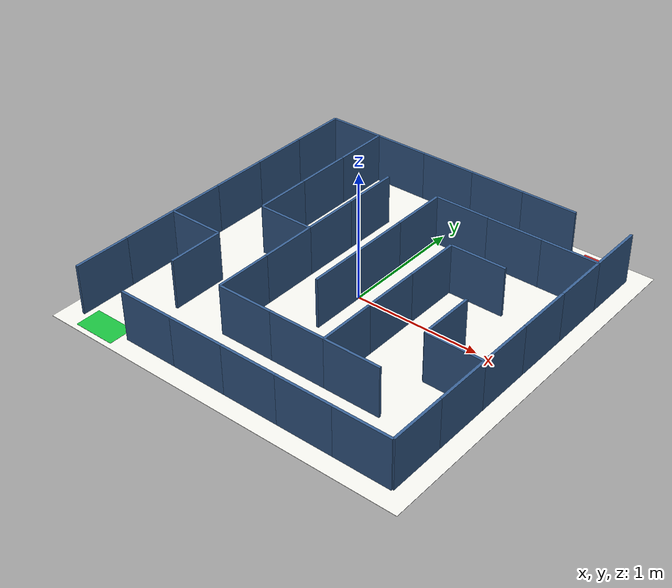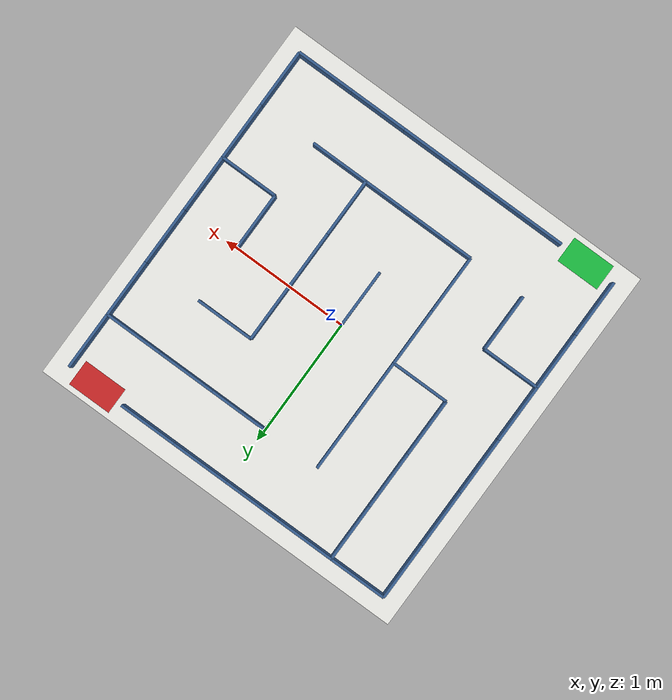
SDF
<?xml version="1.0" ?>
<sdf version="1.8">
  <world name="maze_world_demo">

    <include>
      <uri>https://fuel.gazebosim.org/1.0/OpenRobotics/models/Sun</uri>
    </include>

    <plugin filename="gz-sim-physics-system"
            name="gz::sim::systems::Physics"/>

    <plugin filename="gz-sim-user-commands-system"
            name="gz::sim::systems::UserCommands"/>

    <plugin filename="gz-sim-scene-broadcaster-system"
            name="gz::sim::systems::SceneBroadcaster"/>

    <plugin filename="gz-sim-sensors-system"
            name="gz::sim::systems::Sensors">
      <render_engine>ogre2</render_engine>
    </plugin>

    <scene>
      <ambient>0.4 0.4 0.4 1</ambient>
    </scene>

    <model name="white_floor">
      <static>true</static>
      <pose>0 0 0 0 0 0</pose>
      <link name="floor_link">
        <collision name="collision">
          <geometry>
            <plane>
              <normal>0 0 1</normal>
              <size>3 3</size>
            </plane>
          </geometry>
        </collision>
        <visual name="visual">
          <geometry>
            <plane>
              <normal>0 0 1</normal>
              <size>3 3</size>
            </plane>
          </geometry>
          <material>
            <ambient>0.92 0.92 0.9 1</ambient>
            <diffuse>0.95 0.95 0.93 1</diffuse>
            <specular>0.05 0.05 0.05 1</specular>
          </material>
        </visual>
      </link>
    </model>

    <model name="wall_h_0_0">
      <static>true</static>
      <link name="link">
        <pose>-1.125 1.35 0.2 0 0 0</pose>
        <collision name="collision"><geometry><box><size>0.45 0.02 0.4</size></box></geometry></collision>
        <visual name="visual">
          <geometry><box><size>0.45 0.02 0.4</size></box></geometry>
          <material>
            <ambient>0.18 0.32 0.5 1</ambient>
            <diffuse>0.22 0.38 0.58 1</diffuse>
            <specular>0.15 0.15 0.15 1</specular>
          </material>
        </visual>
      </link>
    </model>

    <model name="wall_h_0_1">
      <static>true</static>
      <link name="link">
        <pose>-0.675 1.35 0.2 0 0 0</pose>
        <collision name="collision"><geometry><box><size>0.45 0.02 0.4</size></box></geometry></collision>
        <visual name="visual">
          <geometry><box><size>0.45 0.02 0.4</size></box></geometry>
          <material>
            <ambient>0.18 0.32 0.5 1</ambient>
            <diffuse>0.22 0.38 0.58 1</diffuse>
            <specular>0.15 0.15 0.15 1</specular>
          </material>
        </visual>
      </link>
    </model>

    <model name="wall_h_0_2">
      <static>true</static>
      <link name="link">
        <pose>-0.225 1.35 0.2 0 0 0</pose>
        <collision name="collision"><geometry><box><size>0.45 0.02 0.4</size></box></geometry></collision>
        <visual name="visual">
          <geometry><box><size>0.45 0.02 0.4</size></box></geometry>
          <material>
            <ambient>0.18 0.32 0.5 1</ambient>
            <diffuse>0.22 0.38 0.58 1</diffuse>
            <specular>0.15 0.15 0.15 1</specular>
          </material>
        </visual>
      </link>
    </model>

    <model name="wall_h_0_3">
      <static>true</static>
      <link name="link">
        <pose>0.225 1.35 0.2 0 0 0</pose>
        <collision name="collision"><geometry><box><size>0.45 0.02 0.4</size></box></geometry></collision>
        <visual name="visual">
          <geometry><box><size>0.45 0.02 0.4</size></box></geometry>
          <material>
            <ambient>0.18 0.32 0.5 1</ambient>
            <diffuse>0.22 0.38 0.58 1</diffuse>
            <specular>0.15 0.15 0.15 1</specular>
          </material>
        </visual>
      </link>
    </model>

    <model name="wall_h_0_4">
      <static>true</static>
      <link name="link">
        <pose>0.675 1.35 0.2 0 0 0</pose>
        <collision name="collision"><geometry><box><size>0.45 0.02 0.4</size></box></geometry></collision>
        <visual name="visual">
          <geometry><box><size>0.45 0.02 0.4</size></box></geometry>
          <material>
            <ambient>0.18 0.32 0.5 1</ambient>
            <diffuse>0.22 0.38 0.58 1</diffuse>
            <specular>0.15 0.15 0.15 1</specular>
          </material>
        </visual>
      </link>
    </model>

    <model name="wall_h_1_3">
      <static>true</static>
      <link name="link">
        <pose>0.225 0.9 0.2 0 0 0</pose>
        <collision name="collision"><geometry><box><size>0.45 0.02 0.4</size></box></geometry></collision>
        <visual name="visual">
          <geometry><box><size>0.45 0.02 0.4</size></box></geometry>
          <material>
            <ambient>0.18 0.32 0.5 1</ambient>
            <diffuse>0.22 0.38 0.58 1</diffuse>
            <specular>0.15 0.15 0.15 1</specular>
          </material>
        </visual>
      </link>
    </model>

    <model name="wall_h_1_4">
      <static>true</static>
      <link name="link">
        <pose>0.675 0.9 0.2 0 0 0</pose>
        <collision name="collision"><geometry><box><size>0.45 0.02 0.4</size></box></geometry></collision>
        <visual name="visual">
          <geometry><box><size>0.45 0.02 0.4</size></box></geometry>
          <material>
            <ambient>0.18 0.32 0.5 1</ambient>
            <diffuse>0.22 0.38 0.58 1</diffuse>
            <specular>0.15 0.15 0.15 1</specular>
          </material>
        </visual>
      </link>
    </model>

    <model name="wall_h_1_5">
      <static>true</static>
      <link name="link">
        <pose>1.125 0.9 0.2 0 0 0</pose>
        <collision name="collision"><geometry><box><size>0.45 0.02 0.4</size></box></geometry></collision>
        <visual name="visual">
          <geometry><box><size>0.45 0.02 0.4</size></box></geometry>
          <material>
            <ambient>0.18 0.32 0.5 1</ambient>
            <diffuse>0.22 0.38 0.58 1</diffuse>
            <specular>0.15 0.15 0.15 1</specular>
          </material>
        </visual>
      </link>
    </model>

    <model name="wall_h_2_4">
      <static>true</static>
      <link name="link">
        <pose>0.675 0.45 0.2 0 0 0</pose>
        <collision name="collision"><geometry><box><size>0.45 0.02 0.4</size></box></geometry></collision>
        <visual name="visual">
          <geometry><box><size>0.45 0.02 0.4</size></box></geometry>
          <material>
            <ambient>0.18 0.32 0.5 1</ambient>
            <diffuse>0.22 0.38 0.58 1</diffuse>
            <specular>0.15 0.15 0.15 1</specular>
          </material>
        </visual>
      </link>
    </model>

    <model name="wall_h_3_1">
      <static>true</static>
      <link name="link">
        <pose>-0.675 0 0.2 0 0 0</pose>
        <collision name="collision"><geometry><box><size>0.45 0.02 0.4</size></box></geometry></collision>
        <visual name="visual">
          <geometry><box><size>0.45 0.02 0.4</size></box></geometry>
          <material>
            <ambient>0.18 0.32 0.5 1</ambient>
            <diffuse>0.22 0.38 0.58 1</diffuse>
            <specular>0.15 0.15 0.15 1</specular>
          </material>
        </visual>
      </link>
    </model>

    <model name="wall_h_4_0">
      <static>true</static>
      <link name="link">
        <pose>-1.125 -0.45 0.2 0 0 0</pose>
        <collision name="collision"><geometry><box><size>0.45 0.02 0.4</size></box></geometry></collision>
        <visual name="visual">
          <geometry><box><size>0.45 0.02 0.4</size></box></geometry>
          <material>
            <ambient>0.18 0.32 0.5 1</ambient>
            <diffuse>0.22 0.38 0.58 1</diffuse>
            <specular>0.15 0.15 0.15 1</specular>
          </material>
        </visual>
      </link>
    </model>

    <model name="wall_h_4_5">
      <static>true</static>
      <link name="link">
        <pose>1.125 -0.45 0.2 0 0 0</pose>
        <collision name="collision"><geometry><box><size>0.45 0.02 0.4</size></box></geometry></collision>
        <visual name="visual">
          <geometry><box><size>0.45 0.02 0.4</size></box></geometry>
          <material>
            <ambient>0.18 0.32 0.5 1</ambient>
            <diffuse>0.22 0.38 0.58 1</diffuse>
            <specular>0.15 0.15 0.15 1</specular>
          </material>
        </visual>
      </link>
    </model>

    <model name="wall_h_5_2">
      <static>true</static>
      <link name="link">
        <pose>-0.225 -0.9 0.2 0 0 0</pose>
        <collision name="collision"><geometry><box><size>0.45 0.02 0.4</size></box></geometry></collision>
        <visual name="visual">
          <geometry><box><size>0.45 0.02 0.4</size></box></geometry>
          <material>
            <ambient>0.18 0.32 0.5 1</ambient>
            <diffuse>0.22 0.38 0.58 1</diffuse>
            <specular>0.15 0.15 0.15 1</specular>
          </material>
        </visual>
      </link>
    </model>

    <model name="wall_h_5_3">
      <static>true</static>
      <link name="link">
        <pose>0.225 -0.9 0.2 0 0 0</pose>
        <collision name="collision"><geometry><box><size>0.45 0.02 0.4</size></box></geometry></collision>
        <visual name="visual">
          <geometry><box><size>0.45 0.02 0.4</size></box></geometry>
          <material>
            <ambient>0.18 0.32 0.5 1</ambient>
            <diffuse>0.22 0.38 0.58 1</diffuse>
            <specular>0.15 0.15 0.15 1</specular>
          </material>
        </visual>
      </link>
    </model>

    <model name="wall_h_5_4">
      <static>true</static>
      <link name="link">
        <pose>0.675 -0.9 0.2 0 0 0</pose>
        <collision name="collision"><geometry><box><size>0.45 0.02 0.4</size></box></geometry></collision>
        <visual name="visual">
          <geometry><box><size>0.45 0.02 0.4</size></box></geometry>
          <material>
            <ambient>0.18 0.32 0.5 1</ambient>
            <diffuse>0.22 0.38 0.58 1</diffuse>
            <specular>0.15 0.15 0.15 1</specular>
          </material>
        </visual>
      </link>
    </model>

    <model name="wall_h_6_1">
      <static>true</static>
      <link name="link">
        <pose>-0.675 -1.35 0.2 0 0 0</pose>
        <collision name="collision"><geometry><box><size>0.45 0.02 0.4</size></box></geometry></collision>
        <visual name="visual">
          <geometry><box><size>0.45 0.02 0.4</size></box></geometry>
          <material>
            <ambient>0.18 0.32 0.5 1</ambient>
            <diffuse>0.22 0.38 0.58 1</diffuse>
            <specular>0.15 0.15 0.15 1</specular>
          </material>
        </visual>
      </link>
    </model>

    <model name="wall_h_6_2">
      <static>true</static>
      <link name="link">
        <pose>-0.225 -1.35 0.2 0 0 0</pose>
        <collision name="collision"><geometry><box><size>0.45 0.02 0.4</size></box></geometry></collision>
        <visual name="visual">
          <geometry><box><size>0.45 0.02 0.4</size></box></geometry>
          <material>
            <ambient>0.18 0.32 0.5 1</ambient>
            <diffuse>0.22 0.38 0.58 1</diffuse>
            <specular>0.15 0.15 0.15 1</specular>
          </material>
        </visual>
      </link>
    </model>

    <model name="wall_h_6_3">
      <static>true</static>
      <link name="link">
        <pose>0.225 -1.35 0.2 0 0 0</pose>
        <collision name="collision"><geometry><box><size>0.45 0.02 0.4</size></box></geometry></collision>
        <visual name="visual">
          <geometry><box><size>0.45 0.02 0.4</size></box></geometry>
          <material>
            <ambient>0.18 0.32 0.5 1</ambient>
            <diffuse>0.22 0.38 0.58 1</diffuse>
            <specular>0.15 0.15 0.15 1</specular>
          </material>
        </visual>
      </link>
    </model>

    <model name="wall_h_6_4">
      <static>true</static>
      <link name="link">
        <pose>0.675 -1.35 0.2 0 0 0</pose>
        <collision name="collision"><geometry><box><size>0.45 0.02 0.4</size></box></geometry></collision>
        <visual name="visual">
          <geometry><box><size>0.45 0.02 0.4</size></box></geometry>
          <material>
            <ambient>0.18 0.32 0.5 1</ambient>
            <diffuse>0.22 0.38 0.58 1</diffuse>
            <specular>0.15 0.15 0.15 1</specular>
          </material>
        </visual>
      </link>
    </model>

    <model name="wall_h_6_5">
      <static>true</static>
      <link name="link">
        <pose>1.125 -1.35 0.2 0 0 0</pose>
        <collision name="collision"><geometry><box><size>0.45 0.02 0.4</size></box></geometry></collision>
        <visual name="visual">
          <geometry><box><size>0.45 0.02 0.4</size></box></geometry>
          <material>
            <ambient>0.18 0.32 0.5 1</ambient>
            <diffuse>0.22 0.38 0.58 1</diffuse>
            <specular>0.15 0.15 0.15 1</specular>
          </material>
        </visual>
      </link>
    </model>

    <model name="wall_v_0_0">
      <static>true</static>
      <link name="link">
        <pose>-1.35 1.125 0.2 0 0 0</pose>
        <collision name="collision"><geometry><box><size>0.02 0.45 0.4</size></box></geometry></collision>
        <visual name="visual">
          <geometry><box><size>0.02 0.45 0.4</size></box></geometry>
          <material>
            <ambient>0.18 0.32 0.5 1</ambient>
            <diffuse>0.22 0.38 0.58 1</diffuse>
            <specular>0.15 0.15 0.15 1</specular>
          </material>
        </visual>
      </link>
    </model>

    <model name="wall_v_0_1">
      <static>true</static>
      <link name="link">
        <pose>-1.35 0.675 0.2 0 0 0</pose>
        <collision name="collision"><geometry><box><size>0.02 0.45 0.4</size></box></geometry></collision>
        <visual name="visual">
          <geometry><box><size>0.02 0.45 0.4</size></box></geometry>
          <material>
            <ambient>0.18 0.32 0.5 1</ambient>
            <diffuse>0.22 0.38 0.58 1</diffuse>
            <specular>0.15 0.15 0.15 1</specular>
          </material>
        </visual>
      </link>
    </model>

    <model name="wall_v_0_2">
      <static>true</static>
      <link name="link">
        <pose>-1.35 0.225 0.2 0 0 0</pose>
        <collision name="collision"><geometry><box><size>0.02 0.45 0.4</size></box></geometry></collision>
        <visual name="visual">
          <geometry><box><size>0.02 0.45 0.4</size></box></geometry>
          <material>
            <ambient>0.18 0.32 0.5 1</ambient>
            <diffuse>0.22 0.38 0.58 1</diffuse>
            <specular>0.15 0.15 0.15 1</specular>
          </material>
        </visual>
      </link>
    </model>

    <model name="wall_v_0_3">
      <static>true</static>
      <link name="link">
        <pose>-1.35 -0.225 0.2 0 0 0</pose>
        <collision name="collision"><geometry><box><size>0.02 0.45 0.4</size></box></geometry></collision>
        <visual name="visual">
          <geometry><box><size>0.02 0.45 0.4</size></box></geometry>
          <material>
            <ambient>0.18 0.32 0.5 1</ambient>
            <diffuse>0.22 0.38 0.58 1</diffuse>
            <specular>0.15 0.15 0.15 1</specular>
          </material>
        </visual>
      </link>
    </model>

    <model name="wall_v_0_4">
      <static>true</static>
      <link name="link">
        <pose>-1.35 -0.675 0.2 0 0 0</pose>
        <collision name="collision"><geometry><box><size>0.02 0.45 0.4</size></box></geometry></collision>
        <visual name="visual">
          <geometry><box><size>0.02 0.45 0.4</size></box></geometry>
          <material>
            <ambient>0.18 0.32 0.5 1</ambient>
            <diffuse>0.22 0.38 0.58 1</diffuse>
            <specular>0.15 0.15 0.15 1</specular>
          </material>
        </visual>
      </link>
    </model>

    <model name="wall_v_0_5">
      <static>true</static>
      <link name="link">
        <pose>-1.35 -1.125 0.2 0 0 0</pose>
        <collision name="collision"><geometry><box><size>0.02 0.45 0.4</size></box></geometry></collision>
        <visual name="visual">
          <geometry><box><size>0.02 0.45 0.4</size></box></geometry>
          <material>
            <ambient>0.18 0.32 0.5 1</ambient>
            <diffuse>0.22 0.38 0.58 1</diffuse>
            <specular>0.15 0.15 0.15 1</specular>
          </material>
        </visual>
      </link>
    </model>

    <model name="wall_v_1_0">
      <static>true</static>
      <link name="link">
        <pose>-0.9 1.125 0.2 0 0 0</pose>
        <collision name="collision"><geometry><box><size>0.02 0.45 0.4</size></box></geometry></collision>
        <visual name="visual">
          <geometry><box><size>0.02 0.45 0.4</size></box></geometry>
          <material>
            <ambient>0.18 0.32 0.5 1</ambient>
            <diffuse>0.22 0.38 0.58 1</diffuse>
            <specular>0.15 0.15 0.15 1</specular>
          </material>
        </visual>
      </link>
    </model>

    <model name="wall_v_1_1">
      <static>true</static>
      <link name="link">
        <pose>-0.9 0.675 0.2 0 0 0</pose>
        <collision name="collision"><geometry><box><size>0.02 0.45 0.4</size></box></geometry></collision>
        <visual name="visual">
          <geometry><box><size>0.02 0.45 0.4</size></box></geometry>
          <material>
            <ambient>0.18 0.32 0.5 1</ambient>
            <diffuse>0.22 0.38 0.58 1</diffuse>
            <specular>0.15 0.15 0.15 1</specular>
          </material>
        </visual>
      </link>
    </model>

    <model name="wall_v_1_2">
      <static>true</static>
      <link name="link">
        <pose>-0.9 0.225 0.2 0 0 0</pose>
        <collision name="collision"><geometry><box><size>0.02 0.45 0.4</size></box></geometry></collision>
        <visual name="visual">
          <geometry><box><size>0.02 0.45 0.4</size></box></geometry>
          <material>
            <ambient>0.18 0.32 0.5 1</ambient>
            <diffuse>0.22 0.38 0.58 1</diffuse>
            <specular>0.15 0.15 0.15 1</specular>
          </material>
        </visual>
      </link>
    </model>

    <model name="wall_v_1_4">
      <static>true</static>
      <link name="link">
        <pose>-0.9 -0.675 0.2 0 0 0</pose>
        <collision name="collision"><geometry><box><size>0.02 0.45 0.4</size></box></geometry></collision>
        <visual name="visual">
          <geometry><box><size>0.02 0.45 0.4</size></box></geometry>
          <material>
            <ambient>0.18 0.32 0.5 1</ambient>
            <diffuse>0.22 0.38 0.58 1</diffuse>
            <specular>0.15 0.15 0.15 1</specular>
          </material>
        </visual>
      </link>
    </model>

    <model name="wall_v_2_1">
      <static>true</static>
      <link name="link">
        <pose>-0.45 0.675 0.2 0 0 0</pose>
        <collision name="collision"><geometry><box><size>0.02 0.45 0.4</size></box></geometry></collision>
        <visual name="visual">
          <geometry><box><size>0.02 0.45 0.4</size></box></geometry>
          <material>
            <ambient>0.18 0.32 0.5 1</ambient>
            <diffuse>0.22 0.38 0.58 1</diffuse>
            <specular>0.15 0.15 0.15 1</specular>
          </material>
        </visual>
      </link>
    </model>

    <model name="wall_v_2_2">
      <static>true</static>
      <link name="link">
        <pose>-0.45 0.225 0.2 0 0 0</pose>
        <collision name="collision"><geometry><box><size>0.02 0.45 0.4</size></box></geometry></collision>
        <visual name="visual">
          <geometry><box><size>0.02 0.45 0.4</size></box></geometry>
          <material>
            <ambient>0.18 0.32 0.5 1</ambient>
            <diffuse>0.22 0.38 0.58 1</diffuse>
            <specular>0.15 0.15 0.15 1</specular>
          </material>
        </visual>
      </link>
    </model>

    <model name="wall_v_2_3">
      <static>true</static>
      <link name="link">
        <pose>-0.45 -0.225 0.2 0 0 0</pose>
        <collision name="collision"><geometry><box><size>0.02 0.45 0.4</size></box></geometry></collision>
        <visual name="visual">
          <geometry><box><size>0.02 0.45 0.4</size></box></geometry>
          <material>
            <ambient>0.18 0.32 0.5 1</ambient>
            <diffuse>0.22 0.38 0.58 1</diffuse>
            <specular>0.15 0.15 0.15 1</specular>
          </material>
        </visual>
      </link>
    </model>

    <model name="wall_v_2_4">
      <static>true</static>
      <link name="link">
        <pose>-0.45 -0.675 0.2 0 0 0</pose>
        <collision name="collision"><geometry><box><size>0.02 0.45 0.4</size></box></geometry></collision>
        <visual name="visual">
          <geometry><box><size>0.02 0.45 0.4</size></box></geometry>
          <material>
            <ambient>0.18 0.32 0.5 1</ambient>
            <diffuse>0.22 0.38 0.58 1</diffuse>
            <specular>0.15 0.15 0.15 1</specular>
          </material>
        </visual>
      </link>
    </model>

    <model name="wall_v_3_1">
      <static>true</static>
      <link name="link">
        <pose>0 0.675 0.2 0 0 0</pose>
        <collision name="collision"><geometry><box><size>0.02 0.45 0.4</size></box></geometry></collision>
        <visual name="visual">
          <geometry><box><size>0.02 0.45 0.4</size></box></geometry>
          <material>
            <ambient>0.18 0.32 0.5 1</ambient>
            <diffuse>0.22 0.38 0.58 1</diffuse>
            <specular>0.15 0.15 0.15 1</specular>
          </material>
        </visual>
      </link>
    </model>

    <model name="wall_v_3_2">
      <static>true</static>
      <link name="link">
        <pose>0 0.225 0.2 0 0 0</pose>
        <collision name="collision"><geometry><box><size>0.02 0.45 0.4</size></box></geometry></collision>
        <visual name="visual">
          <geometry><box><size>0.02 0.45 0.4</size></box></geometry>
          <material>
            <ambient>0.18 0.32 0.5 1</ambient>
            <diffuse>0.22 0.38 0.58 1</diffuse>
            <specular>0.15 0.15 0.15 1</specular>
          </material>
        </visual>
      </link>
    </model>

    <model name="wall_v_3_3">
      <static>true</static>
      <link name="link">
        <pose>0 -0.225 0.2 0 0 0</pose>
        <collision name="collision"><geometry><box><size>0.02 0.45 0.4</size></box></geometry></collision>
        <visual name="visual">
          <geometry><box><size>0.02 0.45 0.4</size></box></geometry>
          <material>
            <ambient>0.18 0.32 0.5 1</ambient>
            <diffuse>0.22 0.38 0.58 1</diffuse>
            <specular>0.15 0.15 0.15 1</specular>
          </material>
        </visual>
      </link>
    </model>

    <model name="wall_v_4_2">
      <static>true</static>
      <link name="link">
        <pose>0.45 0.225 0.2 0 0 0</pose>
        <collision name="collision"><geometry><box><size>0.02 0.45 0.4</size></box></geometry></collision>
        <visual name="visual">
          <geometry><box><size>0.02 0.45 0.4</size></box></geometry>
          <material>
            <ambient>0.18 0.32 0.5 1</ambient>
            <diffuse>0.22 0.38 0.58 1</diffuse>
            <specular>0.15 0.15 0.15 1</specular>
          </material>
        </visual>
      </link>
    </model>

    <model name="wall_v_4_3">
      <static>true</static>
      <link name="link">
        <pose>0.45 -0.225 0.2 0 0 0</pose>
        <collision name="collision"><geometry><box><size>0.02 0.45 0.4</size></box></geometry></collision>
        <visual name="visual">
          <geometry><box><size>0.02 0.45 0.4</size></box></geometry>
          <material>
            <ambient>0.18 0.32 0.5 1</ambient>
            <diffuse>0.22 0.38 0.58 1</diffuse>
            <specular>0.15 0.15 0.15 1</specular>
          </material>
        </visual>
      </link>
    </model>

    <model name="wall_v_4_4">
      <static>true</static>
      <link name="link">
        <pose>0.45 -0.675 0.2 0 0 0</pose>
        <collision name="collision"><geometry><box><size>0.02 0.45 0.4</size></box></geometry></collision>
        <visual name="visual">
          <geometry><box><size>0.02 0.45 0.4</size></box></geometry>
          <material>
            <ambient>0.18 0.32 0.5 1</ambient>
            <diffuse>0.22 0.38 0.58 1</diffuse>
            <specular>0.15 0.15 0.15 1</specular>
          </material>
        </visual>
      </link>
    </model>

    <model name="wall_v_5_3">
      <static>true</static>
      <link name="link">
        <pose>0.9 -0.225 0.2 0 0 0</pose>
        <collision name="collision"><geometry><box><size>0.02 0.45 0.4</size></box></geometry></collision>
        <visual name="visual">
          <geometry><box><size>0.02 0.45 0.4</size></box></geometry>
          <material>
            <ambient>0.18 0.32 0.5 1</ambient>
            <diffuse>0.22 0.38 0.58 1</diffuse>
            <specular>0.15 0.15 0.15 1</specular>
          </material>
        </visual>
      </link>
    </model>

    <model name="wall_v_6_0">
      <static>true</static>
      <link name="link">
        <pose>1.35 1.125 0.2 0 0 0</pose>
        <collision name="collision"><geometry><box><size>0.02 0.45 0.4</size></box></geometry></collision>
        <visual name="visual">
          <geometry><box><size>0.02 0.45 0.4</size></box></geometry>
          <material>
            <ambient>0.18 0.32 0.5 1</ambient>
            <diffuse>0.22 0.38 0.58 1</diffuse>
            <specular>0.15 0.15 0.15 1</specular>
          </material>
        </visual>
      </link>
    </model>

    <model name="wall_v_6_1">
      <static>true</static>
      <link name="link">
        <pose>1.35 0.675 0.2 0 0 0</pose>
        <collision name="collision"><geometry><box><size>0.02 0.45 0.4</size></box></geometry></collision>
        <visual name="visual">
          <geometry><box><size>0.02 0.45 0.4</size></box></geometry>
          <material>
            <ambient>0.18 0.32 0.5 1</ambient>
            <diffuse>0.22 0.38 0.58 1</diffuse>
            <specular>0.15 0.15 0.15 1</specular>
          </material>
        </visual>
      </link>
    </model>

    <model name="wall_v_6_2">
      <static>true</static>
      <link name="link">
        <pose>1.35 0.225 0.2 0 0 0</pose>
        <collision name="collision"><geometry><box><size>0.02 0.45 0.4</size></box></geometry></collision>
        <visual name="visual">
          <geometry><box><size>0.02 0.45 0.4</size></box></geometry>
          <material>
            <ambient>0.18 0.32 0.5 1</ambient>
            <diffuse>0.22 0.38 0.58 1</diffuse>
            <specular>0.15 0.15 0.15 1</specular>
          </material>
        </visual>
      </link>
    </model>

    <model name="wall_v_6_3">
      <static>true</static>
      <link name="link">
        <pose>1.35 -0.225 0.2 0 0 0</pose>
        <collision name="collision"><geometry><box><size>0.02 0.45 0.4</size></box></geometry></collision>
        <visual name="visual">
          <geometry><box><size>0.02 0.45 0.4</size></box></geometry>
          <material>
            <ambient>0.18 0.32 0.5 1</ambient>
            <diffuse>0.22 0.38 0.58 1</diffuse>
            <specular>0.15 0.15 0.15 1</specular>
          </material>
        </visual>
      </link>
    </model>

    <model name="wall_v_6_4">
      <static>true</static>
      <link name="link">
        <pose>1.35 -0.675 0.2 0 0 0</pose>
        <collision name="collision"><geometry><box><size>0.02 0.45 0.4</size></box></geometry></collision>
        <visual name="visual">
          <geometry><box><size>0.02 0.45 0.4</size></box></geometry>
          <material>
            <ambient>0.18 0.32 0.5 1</ambient>
            <diffuse>0.22 0.38 0.58 1</diffuse>
            <specular>0.15 0.15 0.15 1</specular>
          </material>
        </visual>
      </link>
    </model>

    <model name="wall_v_6_5">
      <static>true</static>
      <link name="link">
        <pose>1.35 -1.125 0.2 0 0 0</pose>
        <collision name="collision"><geometry><box><size>0.02 0.45 0.4</size></box></geometry></collision>
        <visual name="visual">
          <geometry><box><size>0.02 0.45 0.4</size></box></geometry>
          <material>
            <ambient>0.18 0.32 0.5 1</ambient>
            <diffuse>0.22 0.38 0.58 1</diffuse>
            <specular>0.15 0.15 0.15 1</specular>
          </material>
        </visual>
      </link>
    </model>

    <model name="marker_entry_southwest">
      <static>true</static>
      <link name="link">
        <pose>-1.125 -1.36 0.002 0 0 0</pose>
        <visual name="visual">
          <geometry><box><size>0.34 0.2 0.002</size></box></geometry>
          <material>
            <ambient>0.1 0.75 0.25 1</ambient>
            <diffuse>0.1 0.75 0.25 1</diffuse>
            <emissive>0.05 0.3 0.1 1</emissive>
          </material>
        </visual>
      </link>
    </model>

    <model name="marker_exit_northeast">
      <static>true</static>
      <link name="link">
        <pose>1.125 1.36 0.002 0 0 0</pose>
        <visual name="visual">
          <geometry><box><size>0.34 0.2 0.002</size></box></geometry>
          <material>
            <ambient>0.8 0.15 0.15 1</ambient>
            <diffuse>0.8 0.15 0.15 1</diffuse>
            <emissive>0.3 0.05 0.05 1</emissive>
          </material>
        </visual>
      </link>
    </model>

  </world>
</sdf>
